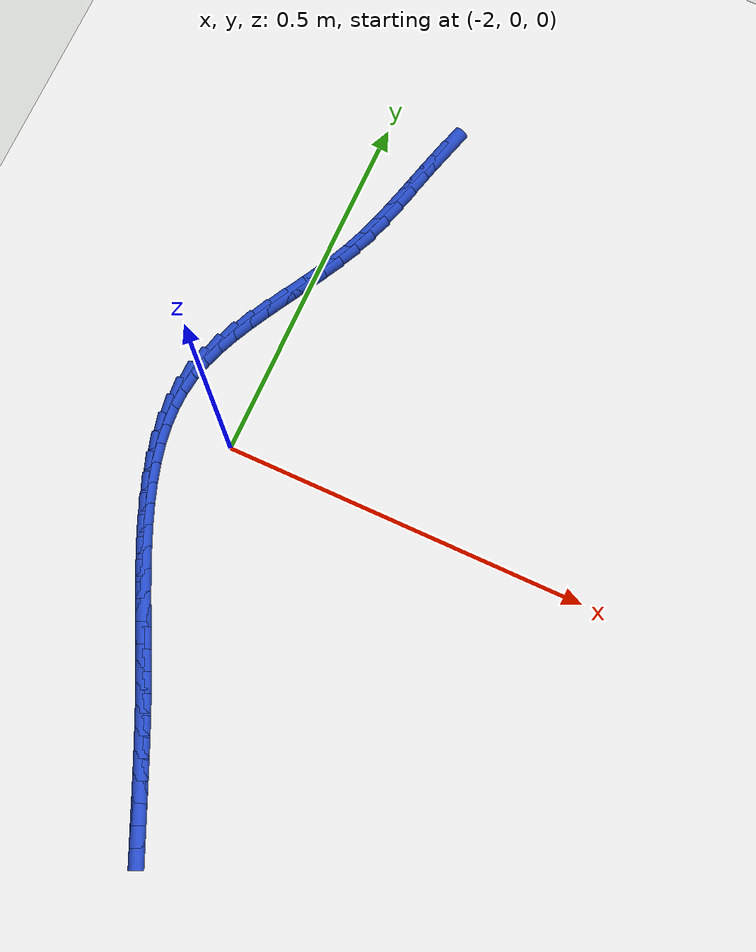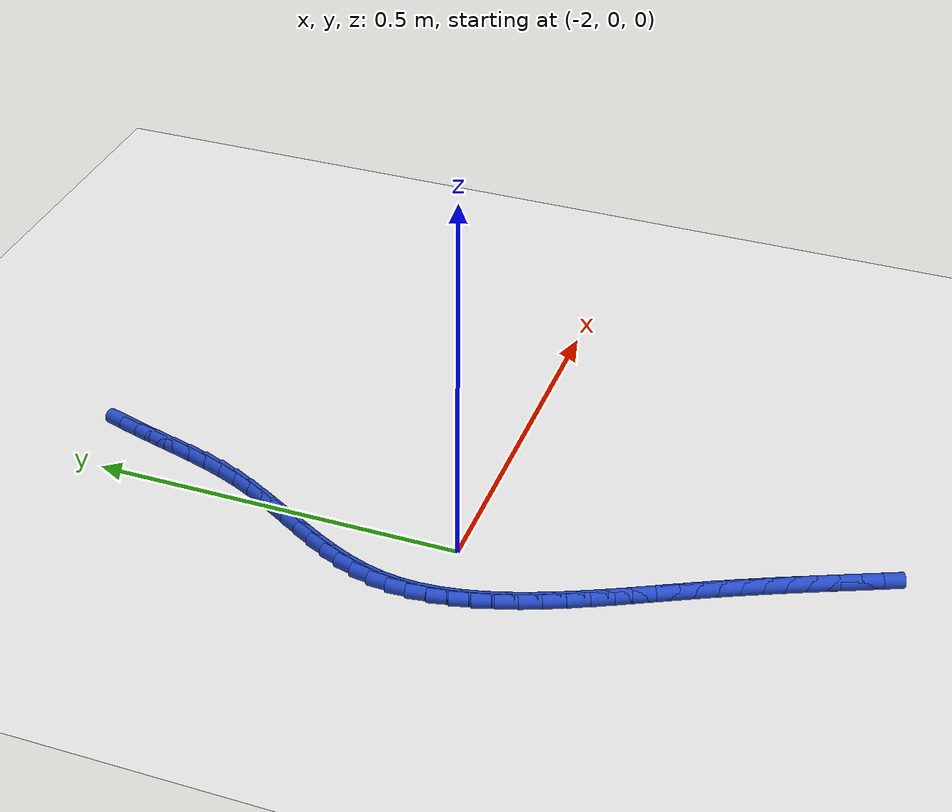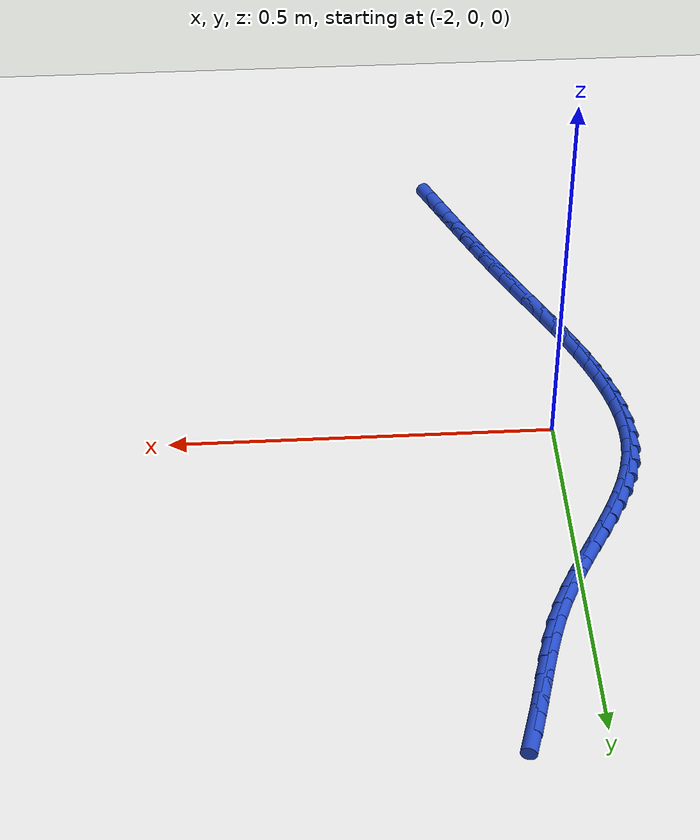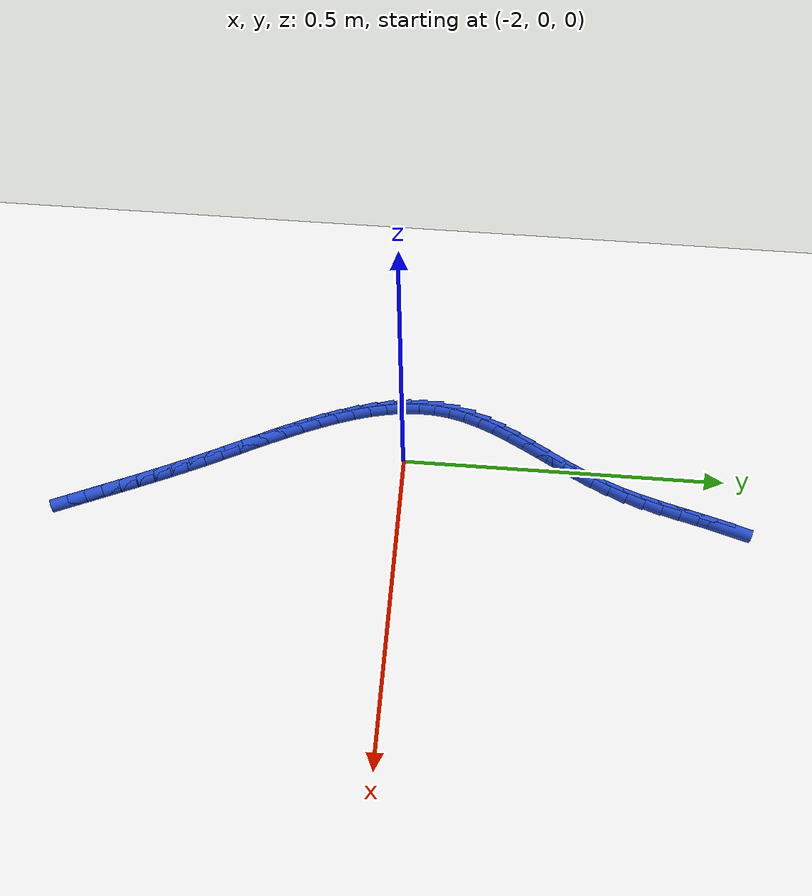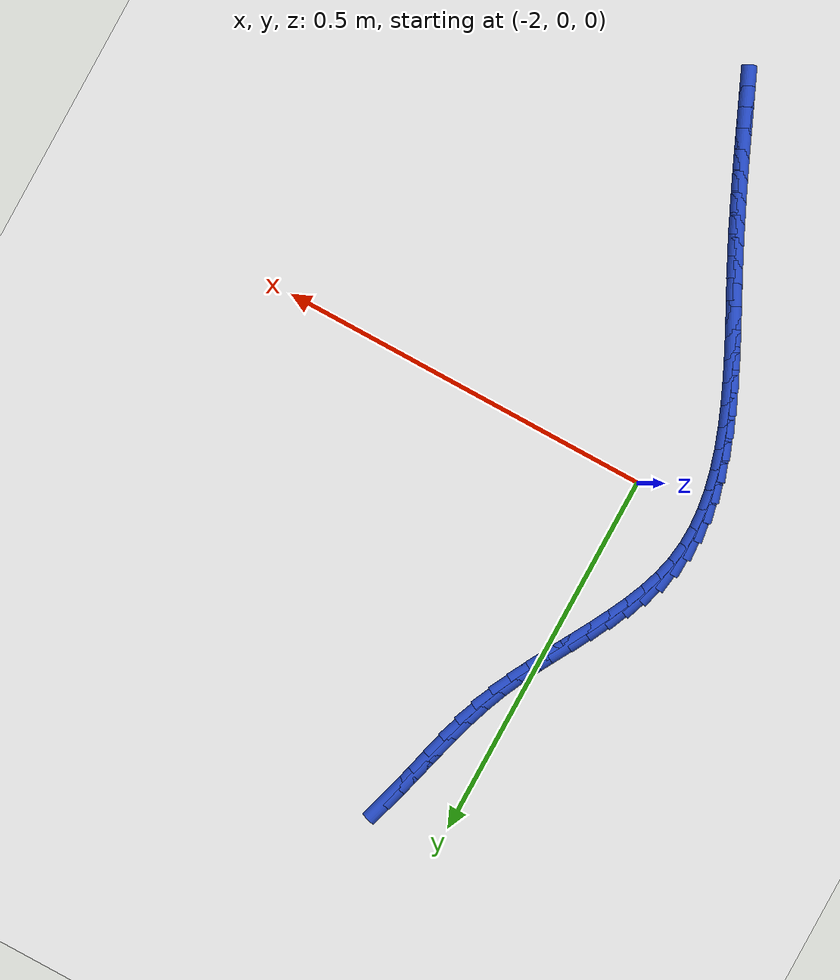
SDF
<sdf version="1.6">
 <world name="default">
  <model name="ground_plane">
   <static>1</static>
   <link name="link">
    <collision name="collision">
     <geometry><plane><normal>0 0 1</normal><size>100 100</size></plane></geometry>
     <surface><friction><ode><mu>100</mu><mu2>50</mu2></ode></friction></surface>
    </collision>
    <visual name="visual">
     <cast_shadows>0</cast_shadows>
     <geometry><plane><normal>0 0 1</normal><size>100 100</size></plane></geometry>
     <material>
      <script><uri>file://media/materials/scripts/gazebo.material</uri><name>Gazebo/WhiteGlow</name></script>
     </material>
    </visual>
   </link>
  </model>
  <model name="line">
   <link name="link_101">
    <pose>-1.9161803227772034 0.49779547880777164 0.01 0 1.57 1.2837888466706204</pose>
    <collision name="collision">
     <geometry><cylinder><radius>0.01</radius><length>0.08</length></cylinder></geometry>
    </collision>
    <visual name="visual">
     <material>
      <script><name>Gazebo/Blue</name><uri>file://media/materials/scripts/gazebo.material</uri></script>
     </material>
     <geometry><cylinder><radius>0.01</radius><length>0.08</length></cylinder></geometry>
    </visual>
   </link>
   <link name="link_102">
    <pose>-1.9238766333405362 0.4717201395766459 0.01 0 1.57 1.3028801973734485</pose>
    <collision name="collision">
     <geometry><cylinder><radius>0.01</radius><length>0.08</length></cylinder></geometry>
    </collision>
    <visual name="visual">
     <material>
      <script><name>Gazebo/Blue</name><uri>file://media/materials/scripts/gazebo.material</uri></script>
     </material>
     <geometry><cylinder><radius>0.01</radius><length>0.08</length></cylinder></geometry>
    </visual>
   </link>
   <link name="link_103">
    <pose>-1.9311558607083457 0.44520354698197184 0.01 0 1.57 1.3073917719558654</pose>
    <collision name="collision">
     <geometry><cylinder><radius>0.01</radius><length>0.08</length></cylinder></geometry>
    </collision>
    <visual name="visual">
     <material>
      <script><name>Gazebo/Blue</name><uri>file://media/materials/scripts/gazebo.material</uri></script>
     </material>
     <geometry><cylinder><radius>0.01</radius><length>0.08</length></cylinder></geometry>
    </visual>
   </link>
   <link name="link_104">
    <pose>-1.9383778122215565 0.41842288091058344 0.01 0 1.57 1.2977335658649534</pose>
    <collision name="collision">
     <geometry><cylinder><radius>0.01</radius><length>0.08</length></cylinder></geometry>
    </collision>
    <visual name="visual">
     <material>
      <script><name>Gazebo/Blue</name><uri>file://media/materials/scripts/gazebo.material</uri></script>
     </material>
     <geometry><cylinder><radius>0.01</radius><length>0.08</length></cylinder></geometry>
    </visual>
   </link>
   <link name="link_105">
    <pose>-1.9459022952210916 0.3915553212493152 0.01 0 1.57 1.2740839402948128</pose>
    <collision name="collision">
     <geometry><cylinder><radius>0.01</radius><length>0.08</length></cylinder></geometry>
    </collision>
    <visual name="visual">
     <material>
      <script><name>Gazebo/Blue</name><uri>file://media/materials/scripts/gazebo.material</uri></script>
     </material>
     <geometry><cylinder><radius>0.01</radius><length>0.08</length></cylinder></geometry>
    </visual>
   </link>
   <link name="link_106">
    <pose>-1.9540891170478771 0.3647780478850012 0.01 0 1.57 1.2364577842066882</pose>
    <collision name="collision">
     <geometry><cylinder><radius>0.01</radius><length>0.08</length></cylinder></geometry>
    </collision>
    <visual name="visual">
     <material>
      <script><name>Gazebo/Blue</name><uri>file://media/materials/scripts/gazebo.material</uri></script>
     </material>
     <geometry><cylinder><radius>0.01</radius><length>0.08</length></cylinder></geometry>
    </visual>
   </link>
   <link name="link_107">
    <pose>-1.9632980850428359 0.33826824070447525 0.01 0 1.57 1.1850240834697372</pose>
    <collision name="collision">
     <geometry><cylinder><radius>0.01</radius><length>0.08</length></cylinder></geometry>
    </collision>
    <visual name="visual">
     <material>
      <script><name>Gazebo/Blue</name><uri>file://media/materials/scripts/gazebo.material</uri></script>
     </material>
     <geometry><cylinder><radius>0.01</radius><length>0.08</length></cylinder></geometry>
    </visual>
   </link>
   <link name="link_108">
    <pose>-1.9738843383934597 0.3122015165144023 0.01 0 1.57 1.130702657966363</pose>
    <collision name="collision">
     <geometry><cylinder><radius>0.01</radius><length>0.08</length></cylinder></geometry>
    </collision>
    <visual name="visual">
     <material>
      <script><name>Gazebo/Blue</name><uri>file://media/materials/scripts/gazebo.material</uri></script>
     </material>
     <geometry><cylinder><radius>0.01</radius><length>0.08</length></cylinder></geometry>
    </visual>
   </link>
   <link name="link_109">
    <pose>-1.985913356658797 0.2866565027599018 0.01 0 1.57 1.090263843092876</pose>
    <collision name="collision">
     <geometry><cylinder><radius>0.01</radius><length>0.08</length></cylinder></geometry>
    </collision>
    <visual name="visual">
     <material>
      <script><name>Gazebo/Blue</name><uri>file://media/materials/scripts/gazebo.material</uri></script>
     </material>
     <geometry><cylinder><radius>0.01</radius><length>0.08</length></cylinder></geometry>
    </visual>
   </link>
   <link name="link_110">
    <pose>-1.998996055768768 0.26155962122178356 0.01 0 1.57 1.064763956198234</pose>
    <collision name="collision">
     <geometry><cylinder><radius>0.01</radius><length>0.08</length></cylinder></geometry>
    </collision>
    <visual name="visual">
     <material>
      <script><name>Gazebo/Blue</name><uri>file://media/materials/scripts/gazebo.material</uri></script>
     </material>
     <geometry><cylinder><radius>0.01</radius><length>0.08</length></cylinder></geometry>
    </visual>
   </link>
   <link name="link_111">
    <pose>-2.0127035885412425 0.23682397943726796 0.01 0 1.57 1.0539449360946902</pose>
    <collision name="collision">
     <geometry><cylinder><radius>0.01</radius><length>0.08</length></cylinder></geometry>
    </collision>
    <visual name="visual">
     <material>
      <script><name>Gazebo/Blue</name><uri>file://media/materials/scripts/gazebo.material</uri></script>
     </material>
     <geometry><cylinder><radius>0.01</radius><length>0.08</length></cylinder></geometry>
    </visual>
   </link>
   <link name="link_112">
    <pose>-2.026607107794089 0.2123626849435751 0.01 0 1.57 1.0578867828450012</pose>
    <collision name="collision">
     <geometry><cylinder><radius>0.01</radius><length>0.08</length></cylinder></geometry>
    </collision>
    <visual name="visual">
     <material>
      <script><name>Gazebo/Blue</name><uri>file://media/materials/scripts/gazebo.material</uri></script>
     </material>
     <geometry><cylinder><radius>0.01</radius><length>0.08</length></cylinder></geometry>
    </visual>
   </link>
   <link name="link_113">
    <pose>-2.040277766345175 0.1880888452779263 0.01 0 1.57 1.0770932475154313</pose>
    <collision name="collision">
     <geometry><cylinder><radius>0.01</radius><length>0.08</length></cylinder></geometry>
    </collision>
    <visual name="visual">
     <material>
      <script><name>Gazebo/Blue</name><uri>file://media/materials/scripts/gazebo.material</uri></script>
     </material>
     <geometry><cylinder><radius>0.01</radius><length>0.08</length></cylinder></geometry>
    </visual>
   </link>
   <link name="link_114">
    <pose>-2.0532867170123694 0.16391556797754153 0.01 0 1.57 1.1125077136626425</pose>
    <collision name="collision">
     <geometry><cylinder><radius>0.01</radius><length>0.08</length></cylinder></geometry>
    </collision>
    <visual name="visual">
     <material>
      <script><name>Gazebo/Blue</name><uri>file://media/materials/scripts/gazebo.material</uri></script>
     </material>
     <geometry><cylinder><radius>0.01</radius><length>0.08</length></cylinder></geometry>
    </visual>
   </link>
   <link name="link_115">
    <pose>-2.0652051126135413 0.1397559605796411 0.01 0 1.57 1.165434167061725</pose>
    <collision name="collision">
     <geometry><cylinder><radius>0.01</radius><length>0.08</length></cylinder></geometry>
    </collision>
    <visual name="visual">
     <material>
      <script><name>Gazebo/Blue</name><uri>file://media/materials/scripts/gazebo.material</uri></script>
     </material>
     <geometry><cylinder><radius>0.01</radius><length>0.08</length></cylinder></geometry>
    </visual>
   </link>
   <link name="link_116">
    <pose>-2.075604105966559 0.11552313062144608 0.01 0 1.57 1.2372946076378284</pose>
    <collision name="collision">
     <geometry><cylinder><radius>0.01</radius><length>0.08</length></cylinder></geometry>
    </collision>
    <visual name="visual">
     <material>
      <script><name>Gazebo/Blue</name><uri>file://media/materials/scripts/gazebo.material</uri></script>
     </material>
     <geometry><cylinder><radius>0.01</radius><length>0.08</length></cylinder></geometry>
    </visual>
   </link>
   <link name="link_117">
    <pose>-2.0840548498892892 0.09113018564017661 0.01 0 1.57 1.3291183476078379</pose>
    <collision name="collision">
     <geometry><cylinder><radius>0.01</radius><length>0.08</length></cylinder></geometry>
    </collision>
    <visual name="visual">
     <material>
      <script><name>Gazebo/Blue</name><uri>file://media/materials/scripts/gazebo.material</uri></script>
     </material>
     <geometry><cylinder><radius>0.01</radius><length>0.08</length></cylinder></geometry>
    </visual>
   </link>
   <link name="link_118">
    <pose>-2.0901284971996037 0.06649023317305325 0.01 0 1.57 1.4380415173701426</pose>
    <collision name="collision">
     <geometry><cylinder><radius>0.01</radius><length>0.08</length></cylinder></geometry>
    </collision>
    <visual name="visual">
     <material>
      <script><name>Gazebo/Blue</name><uri>file://media/materials/scripts/gazebo.material</uri></script>
     </material>
     <geometry><cylinder><radius>0.01</radius><length>0.08</length></cylinder></geometry>
    </visual>
   </link>
   <link name="link_119">
    <pose>-2.0934618083100007 0.04152913258782366 0.01 0 1.57 1.54479018069564</pose>
    <collision name="collision">
     <geometry><cylinder><radius>0.01</radius><length>0.08</length></cylinder></geometry>
    </collision>
    <visual name="visual">
     <material>
      <script><name>Gazebo/Blue</name><uri>file://media/materials/scripts/gazebo.material</uri></script>
     </material>
     <geometry><cylinder><radius>0.01</radius><length>0.08</length></cylinder></geometry>
    </visual>
   </link>
   <link name="link_120">
    <pose>-2.0941192167339753 0.01625586800228439 0.01 0 1.57 -1.5011184578421495</pose>
    <collision name="collision">
     <geometry><cylinder><radius>0.01</radius><length>0.08</length></cylinder></geometry>
    </collision>
    <visual name="visual">
     <material>
      <script><name>Gazebo/Blue</name><uri>file://media/materials/scripts/gazebo.material</uri></script>
     </material>
     <geometry><cylinder><radius>0.01</radius><length>0.08</length></cylinder></geometry>
    </visual>
   </link>
   <link name="link_121">
    <pose>-2.092336539726454 -0.009287265437706731 0.01 0 1.57 -1.4173216040957675</pose>
    <collision name="collision">
     <geometry><cylinder><radius>0.01</radius><length>0.08</length></cylinder></geometry>
    </collision>
    <visual name="visual">
     <material>
      <script><name>Gazebo/Blue</name><uri>file://media/materials/scripts/gazebo.material</uri></script>
     </material>
     <geometry><cylinder><radius>0.01</radius><length>0.08</length></cylinder></geometry>
    </visual>
   </link>
   <link name="link_122">
    <pose>-2.0883500520858296 -0.03505788365578273 0.01 0 1.57 -1.345305863450791</pose>
    <collision name="collision">
     <geometry><cylinder><radius>0.01</radius><length>0.08</length></cylinder></geometry>
    </collision>
    <visual name="visual">
     <material>
      <script><name>Gazebo/Blue</name><uri>file://media/materials/scripts/gazebo.material</uri></script>
     </material>
     <geometry><cylinder><radius>0.01</radius><length>0.08</length></cylinder></geometry>
    </visual>
   </link>
   <link name="link_123">
    <pose>-2.082396028610496 -0.06101360257557669 0.01 0 1.57 -1.2844178595158164</pose>
    <collision name="collision">
     <geometry><cylinder><radius>0.01</radius><length>0.08</length></cylinder></geometry>
    </collision>
    <visual name="visual">
     <material>
      <script><name>Gazebo/Blue</name><uri>file://media/materials/scripts/gazebo.material</uri></script>
     </material>
     <geometry><cylinder><radius>0.01</radius><length>0.08</length></cylinder></geometry>
    </visual>
   </link>
   <link name="link_124">
    <pose>-2.0747107440988466 -0.08711203812072162 0.01 0 1.57 -1.233757643473217</pose>
    <collision name="collision">
     <geometry><cylinder><radius>0.01</radius><length>0.08</length></cylinder></geometry>
    </collision>
    <visual name="visual">
     <material>
      <script><name>Gazebo/Blue</name><uri>file://media/materials/scripts/gazebo.material</uri></script>
     </material>
     <geometry><cylinder><radius>0.01</radius><length>0.08</length></cylinder></geometry>
    </visual>
   </link>
   <link name="link_125">
    <pose>-2.0655304733492756 -0.11331080621485136 0.01 0 1.57 -1.1923832625370907</pose>
    <collision name="collision">
     <geometry><cylinder><radius>0.01</radius><length>0.08</length></cylinder></geometry>
    </collision>
    <visual name="visual">
     <material>
      <script><name>Gazebo/Blue</name><uri>file://media/materials/scripts/gazebo.material</uri></script>
     </material>
     <geometry><cylinder><radius>0.01</radius><length>0.08</length></cylinder></geometry>
    </visual>
   </link>
   <link name="link_126">
    <pose>-2.055091491160177 -0.13956752278159743 0.01 0 1.57 -1.159431189740776</pose>
    <collision name="collision">
     <geometry><cylinder><radius>0.01</radius><length>0.08</length></cylinder></geometry>
    </collision>
    <visual name="visual">
     <material>
      <script><name>Gazebo/Blue</name><uri>file://media/materials/scripts/gazebo.material</uri></script>
     </material>
     <geometry><cylinder><radius>0.01</radius><length>0.08</length></cylinder></geometry>
    </visual>
   </link>
   <link name="link_127">
    <pose>-2.0436300723299445 -0.16583980374459362 0.01 0 1.57 -1.1341785928143315</pose>
    <collision name="collision">
     <geometry><cylinder><radius>0.01</radius><length>0.08</length></cylinder></geometry>
    </collision>
    <visual name="visual">
     <material>
      <script><name>Gazebo/Blue</name><uri>file://media/materials/scripts/gazebo.material</uri></script>
     </material>
     <geometry><cylinder><radius>0.01</radius><length>0.08</length></cylinder></geometry>
    </visual>
   </link>
   <link name="link_128">
    <pose>-2.031382491656972 -0.19208526502747303 0.01 0 1.57 -1.1160713090228056</pose>
    <collision name="collision">
     <geometry><cylinder><radius>0.01</radius><length>0.08</length></cylinder></geometry>
    </collision>
    <visual name="visual">
     <material>
      <script><name>Gazebo/Blue</name><uri>file://media/materials/scripts/gazebo.material</uri></script>
     </material>
     <geometry><cylinder><radius>0.01</radius><length>0.08</length></cylinder></geometry>
    </visual>
   </link>
   <link name="link_129">
    <pose>-2.0185850239396532 -0.21826152255386866 0.01 0 1.57 -1.1047347246185644</pose>
    <collision name="collision">
     <geometry><cylinder><radius>0.01</radius><length>0.08</length></cylinder></geometry>
    </collision>
    <visual name="visual">
     <material>
      <script><name>Gazebo/Blue</name><uri>file://media/materials/scripts/gazebo.material</uri></script>
     </material>
     <geometry><cylinder><radius>0.01</radius><length>0.08</length></cylinder></geometry>
    </visual>
   </link>
   <link name="link_130">
    <pose>-2.005473943976382 -0.2443261922474136 0.01 0 1.57 -1.0999785841207124</pose>
    <collision name="collision">
     <geometry><cylinder><radius>0.01</radius><length>0.08</length></cylinder></geometry>
    </collision>
    <visual name="visual">
     <material>
      <script><name>Gazebo/Blue</name><uri>file://media/materials/scripts/gazebo.material</uri></script>
     </material>
     <geometry><cylinder><radius>0.01</radius><length>0.08</length></cylinder></geometry>
    </visual>
   </link>
   <link name="link_131">
    <pose>-1.9922855265655515 -0.2702368900317407 0.01 0 1.57 -1.1018023812210127</pose>
    <collision name="collision">
     <geometry><cylinder><radius>0.01</radius><length>0.08</length></cylinder></geometry>
    </collision>
    <visual name="visual">
     <material>
      <script><name>Gazebo/Blue</name><uri>file://media/materials/scripts/gazebo.material</uri></script>
     </material>
     <geometry><cylinder><radius>0.01</radius><length>0.08</length></cylinder></geometry>
    </visual>
   </link>
   <link name="link_132">
    <pose>-1.9792560465055566 -0.295951231830484 0.01 0 1.57 -1.1103001286648746</pose>
    <collision name="collision">
     <geometry><cylinder><radius>0.01</radius><length>0.08</length></cylinder></geometry>
    </collision>
    <visual name="visual">
     <material>
      <script><name>Gazebo/Blue</name><uri>file://media/materials/scripts/gazebo.material</uri></script>
     </material>
     <geometry><cylinder><radius>0.01</radius><length>0.08</length></cylinder></geometry>
    </visual>
   </link>
   <link name="link_133">
    <pose>-1.9666179886906758 -0.3214277497877345 0.01 0 1.57 -1.1220745493934436</pose>
    <collision name="collision">
     <geometry><cylinder><radius>0.01</radius><length>0.08</length></cylinder></geometry>
    </collision>
    <visual name="visual">
     <material>
      <script><name>Gazebo/Blue</name><uri>file://media/materials/scripts/gazebo.material</uri></script>
     </material>
     <geometry><cylinder><radius>0.01</radius><length>0.08</length></cylinder></geometry>
    </visual>
   </link>
   <link name="link_134">
    <pose>-1.9544705215737368 -0.34665720568916436 0.01 0 1.57 -1.13251638803855</pose>
    <collision name="collision">
     <geometry><cylinder><radius>0.01</radius><length>0.08</length></cylinder></geometry>
    </collision>
    <visual name="visual">
     <material>
      <script><name>Gazebo/Blue</name><uri>file://media/materials/scripts/gazebo.material</uri></script>
     </material>
     <geometry><cylinder><radius>0.01</radius><length>0.08</length></cylinder></geometry>
    </visual>
   </link>
   <link name="link_135">
    <pose>-1.9427473293336206 -0.3716703676300808 0.01 0 1.57 -1.141197988528813</pose>
    <collision name="collision">
     <geometry><cylinder><radius>0.01</radius><length>0.08</length></cylinder></geometry>
    </collision>
    <visual name="visual">
     <material>
      <script><name>Gazebo/Blue</name><uri>file://media/materials/scripts/gazebo.material</uri></script>
     </material>
     <geometry><cylinder><radius>0.01</radius><length>0.08</length></cylinder></geometry>
    </visual>
   </link>
   <link name="link_136">
    <pose>-1.9313717783058186 -0.3965004980747581 0.01 0 1.57 -1.1479969591945973</pose>
    <collision name="collision">
     <geometry><cylinder><radius>0.01</radius><length>0.08</length></cylinder></geometry>
    </collision>
    <visual name="visual">
     <material>
      <script><name>Gazebo/Blue</name><uri>file://media/materials/scripts/gazebo.material</uri></script>
     </material>
     <geometry><cylinder><radius>0.01</radius><length>0.08</length></cylinder></geometry>
    </visual>
   </link>
   <link name="link_137">
    <pose>-1.9202672348258225 -0.4211808594874704 0.01 0 1.57 -1.1528133621506258</pose>
    <collision name="collision">
     <geometry><cylinder><radius>0.01</radius><length>0.08</length></cylinder></geometry>
    </collision>
    <visual name="visual">
     <material>
      <script><name>Gazebo/Blue</name><uri>file://media/materials/scripts/gazebo.material</uri></script>
     </material>
     <geometry><cylinder><radius>0.01</radius><length>0.08</length></cylinder></geometry>
    </visual>
   </link>
   <link name="link_138">
    <pose>-1.9093570652291223 -0.4457447143324919 0.01 0 1.57 -1.1555723408665877</pose>
    <collision name="collision">
     <geometry><cylinder><radius>0.01</radius><length>0.08</length></cylinder></geometry>
    </collision>
    <visual name="visual">
     <material>
      <script><name>Gazebo/Blue</name><uri>file://media/materials/scripts/gazebo.material</uri></script>
     </material>
     <geometry><cylinder><radius>0.01</radius><length>0.08</length></cylinder></geometry>
    </visual>
   </link>
   <link name="link_139">
    <pose>-1.8985646358512103 -0.47022532507409687 0.01 0 1.57 -1.1562261483048362</pose>
    <collision name="collision">
     <geometry><cylinder><radius>0.01</radius><length>0.08</length></cylinder></geometry>
    </collision>
    <visual name="visual">
     <material>
      <script><name>Gazebo/Blue</name><uri>file://media/materials/scripts/gazebo.material</uri></script>
     </material>
     <geometry><cylinder><radius>0.01</radius><length>0.08</length></cylinder></geometry>
    </visual>
   </link>
   <link name="link_140">
    <pose>-1.887813313027576 -0.49465595417655994 0.01 0 1.57 -1.1547555242063698</pose>
    <collision name="collision">
     <geometry><cylinder><radius>0.01</radius><length>0.08</length></cylinder></geometry>
    </collision>
    <visual name="visual">
     <material>
      <script><name>Gazebo/Blue</name><uri>file://media/materials/scripts/gazebo.material</uri></script>
     </material>
     <geometry><cylinder><radius>0.01</radius><length>0.08</length></cylinder></geometry>
    </visual>
   </link>
  </model>
 </world>
</sdf>
